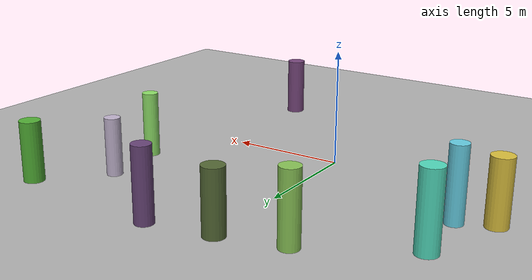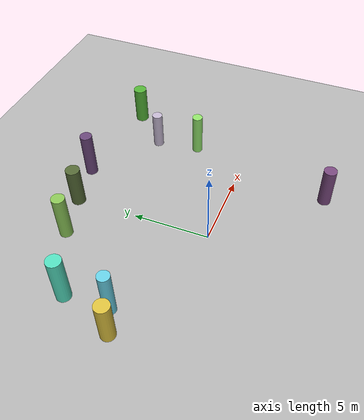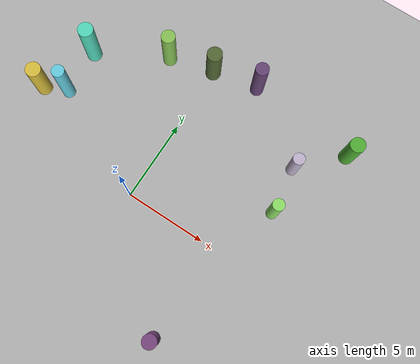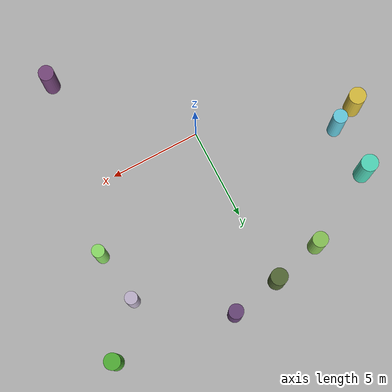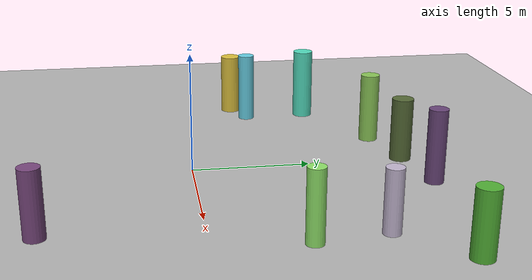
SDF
<sdf version="1.9">
 <world name="obstacle_avoidance">
  <physics type="ode">
   <max_step_size>0.004</max_step_size>
   <real_time_factor>1.0</real_time_factor>
   <real_time_update_rate>250</real_time_update_rate>
  </physics>
  <gravity>0 0 -9.8</gravity>
  <magnetic_field>6e-06 2.3e-05 -4.2e-05</magnetic_field>
  <atmosphere type="adiabatic"/>
  <scene>
   <grid>true</grid>
   <ambient>0.4 0.4 0.4 1</ambient>
   <background>0.7 0.7 0.7 1</background>
   <shadows>false</shadows>
  </scene>
  <plugin filename="gz-sim-physics-system" name="gz::sim::systems::Physics"/>
  <plugin filename="gz-sim-user-commands-system" name="gz::sim::systems::UserCommands"/>
  <plugin filename="gz-sim-scene-broadcaster-system" name="gz::sim::systems::SceneBroadcaster"/>
  <plugin filename="gz-sim-sensors-system" name="gz::sim::systems::Sensors">
   <render_engine>ogre2</render_engine>
  </plugin>
  <plugin filename="gz-sim-imu-system" name="gz::sim::systems::Imu"/>
  <plugin filename="gz-sim-air-pressure-system" name="gz::sim::systems::AirPressure"/>
  <plugin filename="gz-sim-magnetometer-system" name="gz::sim::systems::Magnetometer"/>
  <plugin filename="gz-sim-navsat-system" name="gz::sim::systems::NavSat"/>
  <light type="directional" name="sun">
   <cast_shadows>false</cast_shadows>
   <pose>0 0 10 0 0 0</pose>
   <diffuse>0.9 0.9 0.9 1</diffuse>
   <direction>-0.5 0.1 -0.9</direction>
  </light>
  <model name="ground_plane">
   <static>true</static>
   <link name="link">
    <collision name="c"><geometry><plane><normal>0 0 1</normal><size>200 200</size></plane></geometry></collision>
    <visual name="v">
     <geometry><plane><normal>0 0 1</normal><size>200 200</size></plane></geometry>
     <material><ambient>0.7 0.7 0.7 1</ambient><diffuse>0.7 0.7 0.7 1</diffuse></material>
    </visual>
   </link>
  </model>
  <spherical_coordinates>
   <surface_model>EARTH_WGS84</surface_model>
   <world_frame_orientation>ENU</world_frame_orientation>
   <latitude_deg>47.397971057728974</latitude_deg>
   <longitude_deg>8.546163739800146</longitude_deg>
   <elevation>0</elevation>
  </spherical_coordinates>
  <model name="cyl_1">
   <static>true</static>
   <pose>7.51 3.64 1.44 0 0 0</pose>
   <link name="l">
    <collision name="c">
     <geometry><cylinder><radius>0.35</radius><length>2.89</length></cylinder></geometry>
    </collision>
    <visual name="v">
     <geometry><cylinder><radius>0.35</radius><length>2.89</length></cylinder></geometry>
     <material><ambient>0.56 0.88 0.41 1</ambient><diffuse>0.56 0.88 0.41 1</diffuse></material>
    </visual>
   </link>
  </model>
  <model name="cyl_2">
   <static>true</static>
   <pose>-6.76 3.25 1.59 0 0 0</pose>
   <link name="l">
    <collision name="c">
     <geometry><cylinder><radius>0.38</radius><length>3.17</length></cylinder></geometry>
    </collision>
    <visual name="v">
     <geometry><cylinder><radius>0.38</radius><length>3.17</length></cylinder></geometry>
     <material><ambient>0.40 0.81 0.89 1</ambient><diffuse>0.40 0.81 0.89 1</diffuse></material>
    </visual>
   </link>
  </model>
  <model name="cyl_3">
   <static>true</static>
   <pose>2.72 9.65 1.56 0 0 0</pose>
   <link name="l">
    <collision name="c">
     <geometry><cylinder><radius>0.40</radius><length>3.12</length></cylinder></geometry>
    </collision>
    <visual name="v">
     <geometry><cylinder><radius>0.40</radius><length>3.12</length></cylinder></geometry>
     <material><ambient>0.41 0.27 0.47 1</ambient><diffuse>0.41 0.27 0.47 1</diffuse></material>
    </visual>
   </link>
  </model>
  <model name="cyl_4">
   <static>true</static>
   <pose>-2.80 8.40 1.53 0 0 0</pose>
   <link name="l">
    <collision name="c">
     <geometry><cylinder><radius>0.42</radius><length>3.07</length></cylinder></geometry>
    </collision>
    <visual name="v">
     <geometry><cylinder><radius>0.42</radius><length>3.07</length></cylinder></geometry>
     <material><ambient>0.54 0.77 0.34 1</ambient><diffuse>0.54 0.77 0.34 1</diffuse></material>
    </visual>
   </link>
  </model>
  <model name="cyl_5">
   <static>true</static>
   <pose>5.70 -6.02 1.36 0 0 0</pose>
   <link name="l">
    <collision name="c">
     <geometry><cylinder><radius>0.42</radius><length>2.71</length></cylinder></geometry>
    </collision>
    <visual name="v">
     <geometry><cylinder><radius>0.42</radius><length>2.71</length></cylinder></geometry>
     <material><ambient>0.47 0.28 0.49 1</ambient><diffuse>0.47 0.28 0.49 1</diffuse></material>
    </visual>
   </link>
  </model>
  <model name="cyl_6">
   <static>true</static>
   <pose>7.12 6.52 1.27 0 0 0</pose>
   <link name="l">
    <collision name="c">
     <geometry><cylinder><radius>0.35</radius><length>2.54</length></cylinder></geometry>
    </collision>
    <visual name="v">
     <geometry><cylinder><radius>0.35</radius><length>2.54</length></cylinder></geometry>
     <material><ambient>0.76 0.71 0.81 1</ambient><diffuse>0.76 0.71 0.81 1</diffuse></material>
    </visual>
   </link>
  </model>
  <model name="cyl_7">
   <static>true</static>
   <pose>-0.08 9.09 1.36 0 0 0</pose>
   <link name="l">
    <collision name="c">
     <geometry><cylinder><radius>0.46</radius><length>2.73</length></cylinder></geometry>
    </collision>
    <visual name="v">
     <geometry><cylinder><radius>0.46</radius><length>2.73</length></cylinder></geometry>
     <material><ambient>0.33 0.41 0.21 1</ambient><diffuse>0.33 0.41 0.21 1</diffuse></material>
    </visual>
   </link>
  </model>
  <model name="cyl_8">
   <static>true</static>
   <pose>9.43 8.95 1.31 0 0 0</pose>
   <link name="l">
    <collision name="c">
     <geometry><cylinder><radius>0.45</radius><length>2.63</length></cylinder></geometry>
    </collision>
    <visual name="v">
     <geometry><cylinder><radius>0.45</radius><length>2.63</length></cylinder></geometry>
     <material><ambient>0.32 0.69 0.21 1</ambient><diffuse>0.32 0.69 0.21 1</diffuse></material>
    </visual>
   </link>
  </model>
  <model name="cyl_9">
   <static>true</static>
   <pose>-6.90 6.11 1.62 0 0 0</pose>
   <link name="l">
    <collision name="c">
     <geometry><cylinder><radius>0.46</radius><length>3.25</length></cylinder></geometry>
    </collision>
    <visual name="v">
     <geometry><cylinder><radius>0.46</radius><length>3.25</length></cylinder></geometry>
     <material><ambient>0.32 0.86 0.74 1</ambient><diffuse>0.32 0.86 0.74 1</diffuse></material>
    </visual>
   </link>
  </model>
  <model name="cyl_10">
   <static>true</static>
   <pose>-8.16 2.64 1.40 0 0 0</pose>
   <link name="l">
    <collision name="c">
     <geometry><cylinder><radius>0.46</radius><length>2.80</length></cylinder></geometry>
    </collision>
    <visual name="v">
     <geometry><cylinder><radius>0.46</radius><length>2.80</length></cylinder></geometry>
     <material><ambient>0.86 0.75 0.24 1</ambient><diffuse>0.86 0.75 0.24 1</diffuse></material>
    </visual>
   </link>
  </model>
 </world>
</sdf>
